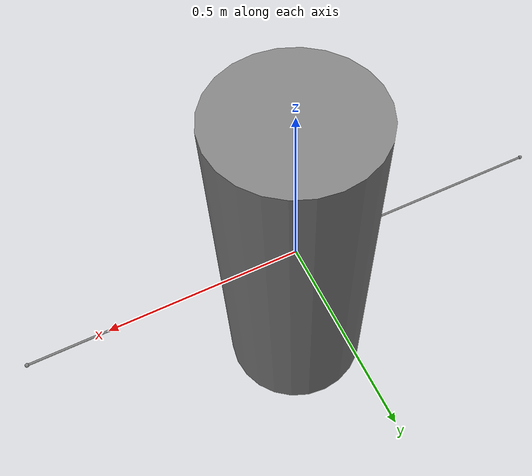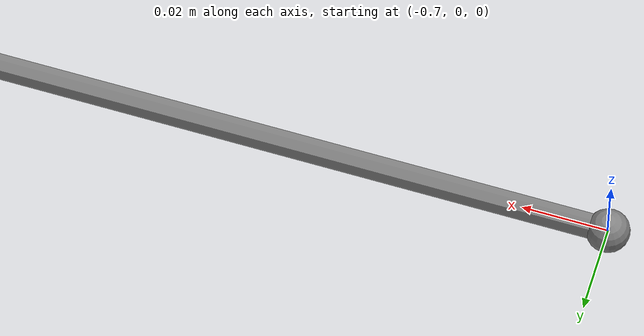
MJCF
<mujoco>
  <option timestep="0.002" integrator="RK4" gravity="0 0 -9.81"/>
  <worldbody>
    <body name="root">
      <inertial pos="0 0 0" mass="1" diaginertia="1 1 1"/>
      <site name="anchor" pos="-0.7 0 0"/>
      <geom name="wrap" type="cylinder" pos="0 0 0" size="0.2 0.5"/>
      <body name="lift" pos="0.7 0 0">
        <inertial pos="0 0 0" mass="1" diaginertia="0.1 0.1 0.1"/>
        <joint name="lift_joint" type="slide" axis="0 0 1" damping="0.2"/>
        <site name="load" pos="0 0 0"/>
      </body>
    </body>
  </worldbody>
  <tendon>
    <spatial name="wrapped">
      <site site="anchor"/>
      <geom geom="wrap" sidesite="load"/>
      <site site="load"/>
    </spatial>
  </tendon>
  <actuator>
    <muscle name="wrapped_muscle" tendon="wrapped" gear="1.6"
            lengthrange="0 2" force="1" timeconst="0.01 0.04"/>
  </actuator>
</mujoco>
